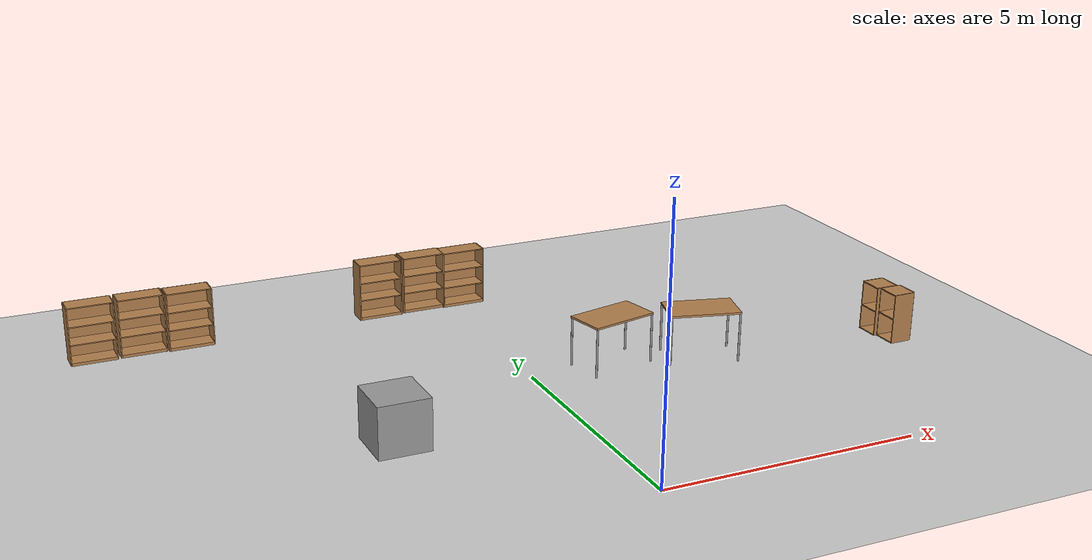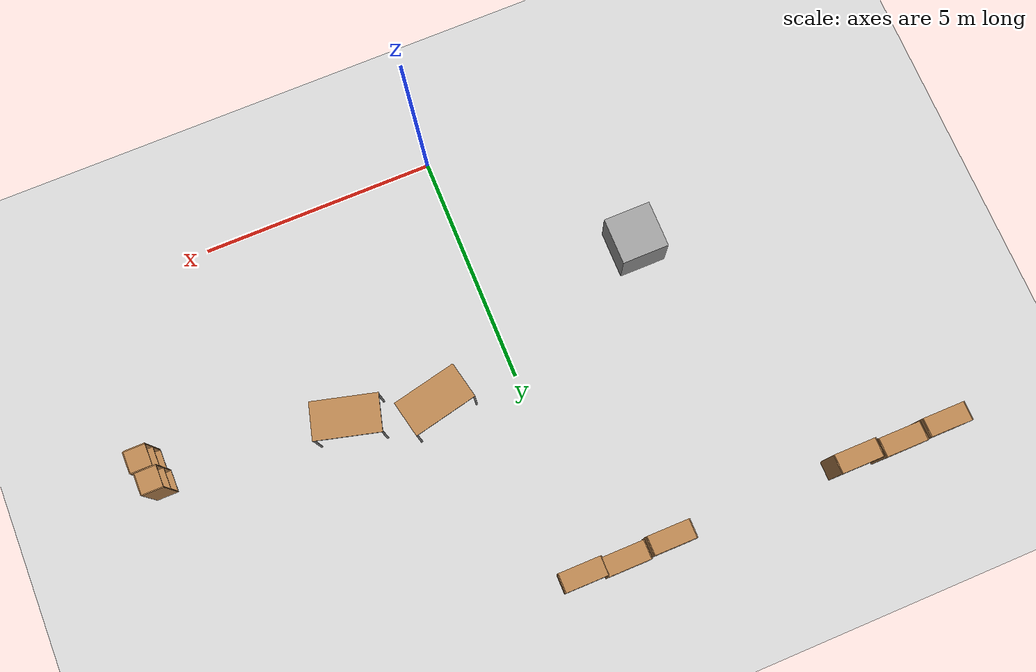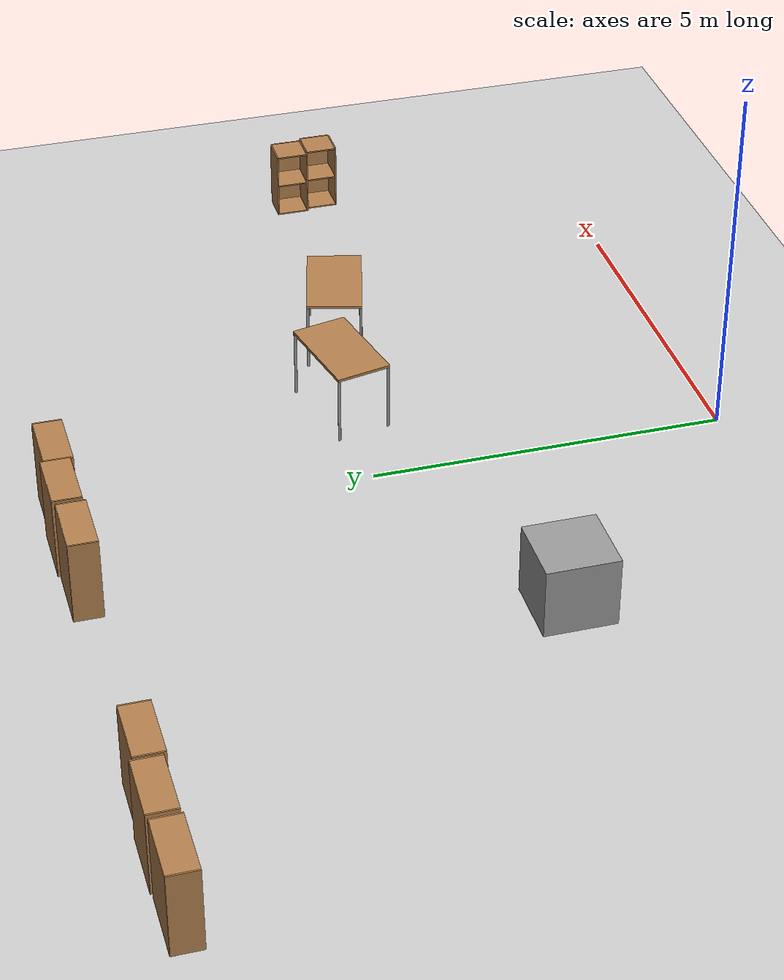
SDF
<sdf version="1.7">
 <world name="default">
  <model name="ground_plane">
   <static>1</static>
   <link name="link">
    <collision name="collision">
     <geometry><plane><normal>0 0 1</normal><size>100 100</size></plane></geometry>
     <surface><friction><ode><mu>100</mu><mu2>50</mu2></ode></friction></surface>
    </collision>
    <visual name="visual">
     <cast_shadows>0</cast_shadows>
     <geometry><plane><normal>0 0 1</normal><size>100 100</size></plane></geometry>
     <material>
      <script><uri>file://media/materials/scripts/gazebo.material</uri><name>Gazebo/Grey</name></script>
     </material>
    </visual>
   </link>
  </model>
  <model name="cabinet">
   <static>1</static>
   <link name="cabinet_bottom_plate">
    <inertial>
     <pose>0 0 -1 0 -0 0</pose>
     <inertia><ixx>2.05</ixx><ixy>0</ixy><ixz>0</ixz><iyy>2.05</iyy><iyz>0</iyz><izz>2.05</izz></inertia>
     <mass>25</mass>
    </inertial>
    <collision name="cabinet_bottom_plate_geom">
     <pose>0 0 0.01 0 -0 0</pose>
     <geometry><box><size>0.45 0.45 0.02</size></box></geometry>
    </collision>
    <visual name="cabinet_bottom_plate_geom_visual">
     <pose>0 0 0.01 0 -0 0</pose>
     <geometry><box><size>0.45 0.45 0.02</size></box></geometry>
     <material>
      <script><uri>file://media/materials/scripts/gazebo.material</uri><name>Gazebo/Wood</name></script>
     </material>
    </visual>
    <collision name="cabinet_bottom_plate_geom_cabinet_back_plate">
     <pose>0.235 0 0.51 0 -0 0</pose>
     <geometry><box><size>0.02 0.45 1.02</size></box></geometry>
    </collision>
    <visual name="cabinet_bottom_plate_geom_cabinet_back_plate_visual">
     <pose>0.235 0 0.51 0 -0 0</pose>
     <geometry><box><size>0.02 0.45 1.02</size></box></geometry>
     <material>
      <script><uri>file://media/materials/scripts/gazebo.material</uri><name>Gazebo/Wood</name></script>
     </material>
    </visual>
    <collision name="cabinet_bottom_plate_geom_cabinet_left_plate">
     <pose>0 0.235 0.51 0 -0 0</pose>
     <geometry><box><size>0.45 0.02 1.02</size></box></geometry>
    </collision>
    <visual name="cabinet_bottom_plate_geom_cabinet_left_plate_visual">
     <pose>0 0.235 0.51 0 -0 0</pose>
     <geometry><box><size>0.45 0.02 1.02</size></box></geometry>
     <material>
      <script><uri>file://media/materials/scripts/gazebo.material</uri><name>Gazebo/Wood</name></script>
     </material>
    </visual>
    <collision name="cabinet_bottom_plate_geom_cabinet_middle_plate">
     <pose>0 0 0.51 0 -0 0</pose>
     <geometry><box><size>0.45 0.45 0.02</size></box></geometry>
    </collision>
    <visual name="cabinet_bottom_plate_geom_cabinet_middle_plate_visual">
     <pose>0 0 0.51 0 -0 0</pose>
     <geometry><box><size>0.45 0.45 0.02</size></box></geometry>
     <material>
      <script><uri>file://media/materials/scripts/gazebo.material</uri><name>Gazebo/Wood</name></script>
     </material>
    </visual>
    <collision name="cabinet_bottom_plate_geom_cabinet_right_plate">
     <pose>0 -0.235 0.51 0 -0 0</pose>
     <geometry><box><size>0.45 0.02 1.02</size></box></geometry>
    </collision>
    <visual name="cabinet_bottom_plate_geom_cabinet_right_plate_visual">
     <pose>0 -0.235 0.51 0 -0 0</pose>
     <geometry><box><size>0.45 0.02 1.02</size></box></geometry>
     <material>
      <script><uri>file://media/materials/scripts/gazebo.material</uri><name>Gazebo/Wood</name></script>
     </material>
    </visual>
    <collision name="cabinet_bottom_plate_geom_cabinet_top_plate">
     <pose>0 0 1.01 0 -0 0</pose>
     <geometry><box><size>0.45 0.45 0.02</size></box></geometry>
    </collision>
    <visual name="cabinet_bottom_plate_geom_cabinet_top_plate_visual">
     <pose>0 0 1.01 0 -0 0</pose>
     <geometry><box><size>0.45 0.45 0.02</size></box></geometry>
     <material>
      <script><uri>file://media/materials/scripts/gazebo.material</uri><name>Gazebo/Wood</name></script>
     </material>
    </visual>
   </link>
   <pose>7.51979 3.85608 0 0 -0 0</pose>
  </model>
  <model name="cabinet_0">
   <static>1</static>
   <link name="cabinet_bottom_plate">
    <inertial>
     <pose>0 0 -1 0 -0 0</pose>
     <inertia><ixx>2.05</ixx><ixy>0</ixy><ixz>0</ixz><iyy>2.05</iyy><iyz>0</iyz><izz>2.05</izz></inertia>
     <mass>25</mass>
    </inertial>
    <collision name="cabinet_bottom_plate_geom">
     <pose>0 0 0.01 0 -0 0</pose>
     <geometry><box><size>0.45 0.45 0.02</size></box></geometry>
    </collision>
    <visual name="cabinet_bottom_plate_geom_visual">
     <pose>0 0 0.01 0 -0 0</pose>
     <geometry><box><size>0.45 0.45 0.02</size></box></geometry>
     <material>
      <script><uri>file://media/materials/scripts/gazebo.material</uri><name>Gazebo/Wood</name></script>
     </material>
    </visual>
    <collision name="cabinet_bottom_plate_geom_cabinet_back_plate">
     <pose>0.235 0 0.51 0 -0 0</pose>
     <geometry><box><size>0.02 0.45 1.02</size></box></geometry>
    </collision>
    <visual name="cabinet_bottom_plate_geom_cabinet_back_plate_visual">
     <pose>0.235 0 0.51 0 -0 0</pose>
     <geometry><box><size>0.02 0.45 1.02</size></box></geometry>
     <material>
      <script><uri>file://media/materials/scripts/gazebo.material</uri><name>Gazebo/Wood</name></script>
     </material>
    </visual>
    <collision name="cabinet_bottom_plate_geom_cabinet_left_plate">
     <pose>0 0.235 0.51 0 -0 0</pose>
     <geometry><box><size>0.45 0.02 1.02</size></box></geometry>
    </collision>
    <visual name="cabinet_bottom_plate_geom_cabinet_left_plate_visual">
     <pose>0 0.235 0.51 0 -0 0</pose>
     <geometry><box><size>0.45 0.02 1.02</size></box></geometry>
     <material>
      <script><uri>file://media/materials/scripts/gazebo.material</uri><name>Gazebo/Wood</name></script>
     </material>
    </visual>
    <collision name="cabinet_bottom_plate_geom_cabinet_middle_plate">
     <pose>0 0 0.51 0 -0 0</pose>
     <geometry><box><size>0.45 0.45 0.02</size></box></geometry>
    </collision>
    <visual name="cabinet_bottom_plate_geom_cabinet_middle_plate_visual">
     <pose>0 0 0.51 0 -0 0</pose>
     <geometry><box><size>0.45 0.45 0.02</size></box></geometry>
     <material>
      <script><uri>file://media/materials/scripts/gazebo.material</uri><name>Gazebo/Wood</name></script>
     </material>
    </visual>
    <collision name="cabinet_bottom_plate_geom_cabinet_right_plate">
     <pose>0 -0.235 0.51 0 -0 0</pose>
     <geometry><box><size>0.45 0.02 1.02</size></box></geometry>
    </collision>
    <visual name="cabinet_bottom_plate_geom_cabinet_right_plate_visual">
     <pose>0 -0.235 0.51 0 -0 0</pose>
     <geometry><box><size>0.45 0.02 1.02</size></box></geometry>
     <material>
      <script><uri>file://media/materials/scripts/gazebo.material</uri><name>Gazebo/Wood</name></script>
     </material>
    </visual>
    <collision name="cabinet_bottom_plate_geom_cabinet_top_plate">
     <pose>0 0 1.01 0 -0 0</pose>
     <geometry><box><size>0.45 0.45 0.02</size></box></geometry>
    </collision>
    <visual name="cabinet_bottom_plate_geom_cabinet_top_plate_visual">
     <pose>0 0 1.01 0 -0 0</pose>
     <geometry><box><size>0.45 0.45 0.02</size></box></geometry>
     <material>
      <script><uri>file://media/materials/scripts/gazebo.material</uri><name>Gazebo/Wood</name></script>
     </material>
    </visual>
   </link>
   <pose>7.4531 4.33816 0 0 -0 0</pose>
  </model>
  <model name="bookshelf">
   <static>1</static>
   <link name="link">
    <inertial><mass>1</mass></inertial>
    <collision name="back">
     <pose>0 0.005 0.6 0 -0 0</pose>
     <geometry><box><size>0.9 0.01 1.2</size></box></geometry>
    </collision>
    <visual name="visual1">
     <pose>0 0.005 0.6 0 -0 0</pose>
     <geometry><box><size>0.9 0.01 1.2</size></box></geometry>
     <material>
      <script><uri>file://media/materials/scripts/gazebo.material</uri><name>Gazebo/Wood</name></script>
     </material>
    </visual>
    <collision name="left_side">
     <pose>0.45 -0.195 0.6 0 -0 0</pose>
     <geometry><box><size>0.02 0.4 1.2</size></box></geometry>
    </collision>
    <visual name="visual2">
     <pose>0.45 -0.195 0.6 0 -0 0</pose>
     <geometry><box><size>0.02 0.4 1.2</size></box></geometry>
     <material>
      <script><uri>file://media/materials/scripts/gazebo.material</uri><name>Gazebo/Wood</name></script>
     </material>
    </visual>
    <collision name="right_side">
     <pose>-0.45 -0.195 0.6 0 -0 0</pose>
     <geometry><box><size>0.02 0.4 1.2</size></box></geometry>
    </collision>
    <visual name="visual3">
     <pose>-0.45 -0.195 0.6 0 -0 0</pose>
     <geometry><box><size>0.02 0.4 1.2</size></box></geometry>
     <material>
      <script><uri>file://media/materials/scripts/gazebo.material</uri><name>Gazebo/Wood</name></script>
     </material>
    </visual>
    <collision name="bottom">
     <pose>0 -0.195 0.03 0 -0 0</pose>
     <geometry><box><size>0.88 0.4 0.06</size></box></geometry>
    </collision>
    <visual name="visual4">
     <pose>0 -0.195 0.03 0 -0 0</pose>
     <geometry><box><size>0.88 0.4 0.06</size></box></geometry>
     <material>
      <script><uri>file://media/materials/scripts/gazebo.material</uri><name>Gazebo/Wood</name></script>
     </material>
    </visual>
    <collision name="top">
     <pose>0 -0.195 1.19 0 -0 0</pose>
     <geometry><box><size>0.88 0.4 0.02</size></box></geometry>
    </collision>
    <visual name="visual5">
     <pose>0 -0.195 1.19 0 -0 0</pose>
     <geometry><box><size>0.88 0.4 0.02</size></box></geometry>
     <material>
      <script><uri>file://media/materials/scripts/gazebo.material</uri><name>Gazebo/Wood</name></script>
     </material>
    </visual>
    <collision name="low_shelf">
     <pose>0 -0.195 0.43 0 -0 0</pose>
     <geometry><box><size>0.88 0.4 0.02</size></box></geometry>
    </collision>
    <visual name="visual6">
     <pose>0 -0.195 0.43 0 -0 0</pose>
     <geometry><box><size>0.88 0.4 0.02</size></box></geometry>
     <material>
      <script><uri>file://media/materials/scripts/gazebo.material</uri><name>Gazebo/Wood</name></script>
     </material>
    </visual>
    <collision name="high_shelf">
     <pose>0 -0.195 0.8 0 -0 0</pose>
     <geometry><box><size>0.88 0.4 0.02</size></box></geometry>
    </collision>
    <visual name="visual7">
     <pose>0 -0.195 0.8 0 -0 0</pose>
     <geometry><box><size>0.88 0.4 0.02</size></box></geometry>
     <material>
      <script><uri>file://media/materials/scripts/gazebo.material</uri><name>Gazebo/Wood</name></script>
     </material>
    </visual>
   </link>
   <pose>0.312449 9.46958 0 0 -0 0</pose>
  </model>
  <model name="bookshelf_clone">
   <static>1</static>
   <link name="link">
    <inertial><mass>1</mass></inertial>
    <collision name="back">
     <pose>0 0.005 0.6 0 -0 0</pose>
     <geometry><box><size>0.9 0.01 1.2</size></box></geometry>
    </collision>
    <visual name="visual1">
     <pose>0 0.005 0.6 0 -0 0</pose>
     <geometry><box><size>0.9 0.01 1.2</size></box></geometry>
     <material>
      <script><uri>file://media/materials/scripts/gazebo.material</uri><name>Gazebo/Wood</name></script>
     </material>
    </visual>
    <collision name="left_side">
     <pose>0.45 -0.195 0.6 0 -0 0</pose>
     <geometry><box><size>0.02 0.4 1.2</size></box></geometry>
    </collision>
    <visual name="visual2">
     <pose>0.45 -0.195 0.6 0 -0 0</pose>
     <geometry><box><size>0.02 0.4 1.2</size></box></geometry>
     <material>
      <script><uri>file://media/materials/scripts/gazebo.material</uri><name>Gazebo/Wood</name></script>
     </material>
    </visual>
    <collision name="right_side">
     <pose>-0.45 -0.195 0.6 0 -0 0</pose>
     <geometry><box><size>0.02 0.4 1.2</size></box></geometry>
    </collision>
    <visual name="visual3">
     <pose>-0.45 -0.195 0.6 0 -0 0</pose>
     <geometry><box><size>0.02 0.4 1.2</size></box></geometry>
     <material>
      <script><uri>file://media/materials/scripts/gazebo.material</uri><name>Gazebo/Wood</name></script>
     </material>
    </visual>
    <collision name="bottom">
     <pose>0 -0.195 0.03 0 -0 0</pose>
     <geometry><box><size>0.88 0.4 0.06</size></box></geometry>
    </collision>
    <visual name="visual4">
     <pose>0 -0.195 0.03 0 -0 0</pose>
     <geometry><box><size>0.88 0.4 0.06</size></box></geometry>
     <material>
      <script><uri>file://media/materials/scripts/gazebo.material</uri><name>Gazebo/Wood</name></script>
     </material>
    </visual>
    <collision name="top">
     <pose>0 -0.195 1.19 0 -0 0</pose>
     <geometry><box><size>0.88 0.4 0.02</size></box></geometry>
    </collision>
    <visual name="visual5">
     <pose>0 -0.195 1.19 0 -0 0</pose>
     <geometry><box><size>0.88 0.4 0.02</size></box></geometry>
     <material>
      <script><uri>file://media/materials/scripts/gazebo.material</uri><name>Gazebo/Wood</name></script>
     </material>
    </visual>
    <collision name="low_shelf">
     <pose>0 -0.195 0.43 0 -0 0</pose>
     <geometry><box><size>0.88 0.4 0.02</size></box></geometry>
    </collision>
    <visual name="visual6">
     <pose>0 -0.195 0.43 0 -0 0</pose>
     <geometry><box><size>0.88 0.4 0.02</size></box></geometry>
     <material>
      <script><uri>file://media/materials/scripts/gazebo.material</uri><name>Gazebo/Wood</name></script>
     </material>
    </visual>
    <collision name="high_shelf">
     <pose>0 -0.195 0.8 0 -0 0</pose>
     <geometry><box><size>0.88 0.4 0.02</size></box></geometry>
    </collision>
    <visual name="visual7">
     <pose>0 -0.195 0.8 0 -0 0</pose>
     <geometry><box><size>0.88 0.4 0.02</size></box></geometry>
     <material>
      <script><uri>file://media/materials/scripts/gazebo.material</uri><name>Gazebo/Wood</name></script>
     </material>
    </visual>
   </link>
   <pose>-0.568814 9.5086 0 0 -0 0</pose>
  </model>
  <model name="bookshelf_clone_0">
   <static>1</static>
   <link name="link">
    <inertial><mass>1</mass></inertial>
    <collision name="back">
     <pose>0 0.005 0.6 0 -0 0</pose>
     <geometry><box><size>0.9 0.01 1.2</size></box></geometry>
    </collision>
    <visual name="visual1">
     <pose>0 0.005 0.6 0 -0 0</pose>
     <geometry><box><size>0.9 0.01 1.2</size></box></geometry>
     <material>
      <script><uri>file://media/materials/scripts/gazebo.material</uri><name>Gazebo/Wood</name></script>
     </material>
    </visual>
    <collision name="left_side">
     <pose>0.45 -0.195 0.6 0 -0 0</pose>
     <geometry><box><size>0.02 0.4 1.2</size></box></geometry>
    </collision>
    <visual name="visual2">
     <pose>0.45 -0.195 0.6 0 -0 0</pose>
     <geometry><box><size>0.02 0.4 1.2</size></box></geometry>
     <material>
      <script><uri>file://media/materials/scripts/gazebo.material</uri><name>Gazebo/Wood</name></script>
     </material>
    </visual>
    <collision name="right_side">
     <pose>-0.45 -0.195 0.6 0 -0 0</pose>
     <geometry><box><size>0.02 0.4 1.2</size></box></geometry>
    </collision>
    <visual name="visual3">
     <pose>-0.45 -0.195 0.6 0 -0 0</pose>
     <geometry><box><size>0.02 0.4 1.2</size></box></geometry>
     <material>
      <script><uri>file://media/materials/scripts/gazebo.material</uri><name>Gazebo/Wood</name></script>
     </material>
    </visual>
    <collision name="bottom">
     <pose>0 -0.195 0.03 0 -0 0</pose>
     <geometry><box><size>0.88 0.4 0.06</size></box></geometry>
    </collision>
    <visual name="visual4">
     <pose>0 -0.195 0.03 0 -0 0</pose>
     <geometry><box><size>0.88 0.4 0.06</size></box></geometry>
     <material>
      <script><uri>file://media/materials/scripts/gazebo.material</uri><name>Gazebo/Wood</name></script>
     </material>
    </visual>
    <collision name="top">
     <pose>0 -0.195 1.19 0 -0 0</pose>
     <geometry><box><size>0.88 0.4 0.02</size></box></geometry>
    </collision>
    <visual name="visual5">
     <pose>0 -0.195 1.19 0 -0 0</pose>
     <geometry><box><size>0.88 0.4 0.02</size></box></geometry>
     <material>
      <script><uri>file://media/materials/scripts/gazebo.material</uri><name>Gazebo/Wood</name></script>
     </material>
    </visual>
    <collision name="low_shelf">
     <pose>0 -0.195 0.43 0 -0 0</pose>
     <geometry><box><size>0.88 0.4 0.02</size></box></geometry>
    </collision>
    <visual name="visual6">
     <pose>0 -0.195 0.43 0 -0 0</pose>
     <geometry><box><size>0.88 0.4 0.02</size></box></geometry>
     <material>
      <script><uri>file://media/materials/scripts/gazebo.material</uri><name>Gazebo/Wood</name></script>
     </material>
    </visual>
    <collision name="high_shelf">
     <pose>0 -0.195 0.8 0 -0 0</pose>
     <geometry><box><size>0.88 0.4 0.02</size></box></geometry>
    </collision>
    <visual name="visual7">
     <pose>0 -0.195 0.8 0 -0 0</pose>
     <geometry><box><size>0.88 0.4 0.02</size></box></geometry>
     <material>
      <script><uri>file://media/materials/scripts/gazebo.material</uri><name>Gazebo/Wood</name></script>
     </material>
    </visual>
   </link>
   <pose>-1.53763 9.47542 0 0 -0 0</pose>
  </model>
  <model name="bookshelf_clone_1">
   <static>1</static>
   <link name="link">
    <inertial><mass>1</mass></inertial>
    <collision name="back">
     <pose>0 0.005 0.6 0 -0 0</pose>
     <geometry><box><size>0.9 0.01 1.2</size></box></geometry>
    </collision>
    <visual name="visual1">
     <pose>0 0.005 0.6 0 -0 0</pose>
     <geometry><box><size>0.9 0.01 1.2</size></box></geometry>
     <material>
      <script><uri>file://media/materials/scripts/gazebo.material</uri><name>Gazebo/Wood</name></script>
     </material>
    </visual>
    <collision name="left_side">
     <pose>0.45 -0.195 0.6 0 -0 0</pose>
     <geometry><box><size>0.02 0.4 1.2</size></box></geometry>
    </collision>
    <visual name="visual2">
     <pose>0.45 -0.195 0.6 0 -0 0</pose>
     <geometry><box><size>0.02 0.4 1.2</size></box></geometry>
     <material>
      <script><uri>file://media/materials/scripts/gazebo.material</uri><name>Gazebo/Wood</name></script>
     </material>
    </visual>
    <collision name="right_side">
     <pose>-0.45 -0.195 0.6 0 -0 0</pose>
     <geometry><box><size>0.02 0.4 1.2</size></box></geometry>
    </collision>
    <visual name="visual3">
     <pose>-0.45 -0.195 0.6 0 -0 0</pose>
     <geometry><box><size>0.02 0.4 1.2</size></box></geometry>
     <material>
      <script><uri>file://media/materials/scripts/gazebo.material</uri><name>Gazebo/Wood</name></script>
     </material>
    </visual>
    <collision name="bottom">
     <pose>0 -0.195 0.03 0 -0 0</pose>
     <geometry><box><size>0.88 0.4 0.06</size></box></geometry>
    </collision>
    <visual name="visual4">
     <pose>0 -0.195 0.03 0 -0 0</pose>
     <geometry><box><size>0.88 0.4 0.06</size></box></geometry>
     <material>
      <script><uri>file://media/materials/scripts/gazebo.material</uri><name>Gazebo/Wood</name></script>
     </material>
    </visual>
    <collision name="top">
     <pose>0 -0.195 1.19 0 -0 0</pose>
     <geometry><box><size>0.88 0.4 0.02</size></box></geometry>
    </collision>
    <visual name="visual5">
     <pose>0 -0.195 1.19 0 -0 0</pose>
     <geometry><box><size>0.88 0.4 0.02</size></box></geometry>
     <material>
      <script><uri>file://media/materials/scripts/gazebo.material</uri><name>Gazebo/Wood</name></script>
     </material>
    </visual>
    <collision name="low_shelf">
     <pose>0 -0.195 0.43 0 -0 0</pose>
     <geometry><box><size>0.88 0.4 0.02</size></box></geometry>
    </collision>
    <visual name="visual6">
     <pose>0 -0.195 0.43 0 -0 0</pose>
     <geometry><box><size>0.88 0.4 0.02</size></box></geometry>
     <material>
      <script><uri>file://media/materials/scripts/gazebo.material</uri><name>Gazebo/Wood</name></script>
     </material>
    </visual>
    <collision name="high_shelf">
     <pose>0 -0.195 0.8 0 -0 0</pose>
     <geometry><box><size>0.88 0.4 0.02</size></box></geometry>
    </collision>
    <visual name="visual7">
     <pose>0 -0.195 0.8 0 -0 0</pose>
     <geometry><box><size>0.88 0.4 0.02</size></box></geometry>
     <material>
      <script><uri>file://media/materials/scripts/gazebo.material</uri><name>Gazebo/Wood</name></script>
     </material>
    </visual>
   </link>
   <pose>-5.53951 9.43477 0 0 -0 0</pose>
  </model>
  <model name="bookshelf_clone_2">
   <static>1</static>
   <link name="link">
    <inertial><mass>1</mass></inertial>
    <collision name="back">
     <pose>0 0.005 0.6 0 -0 0</pose>
     <geometry><box><size>0.9 0.01 1.2</size></box></geometry>
    </collision>
    <visual name="visual1">
     <pose>0 0.005 0.6 0 -0 0</pose>
     <geometry><box><size>0.9 0.01 1.2</size></box></geometry>
     <material>
      <script><uri>file://media/materials/scripts/gazebo.material</uri><name>Gazebo/Wood</name></script>
     </material>
    </visual>
    <collision name="left_side">
     <pose>0.45 -0.195 0.6 0 -0 0</pose>
     <geometry><box><size>0.02 0.4 1.2</size></box></geometry>
    </collision>
    <visual name="visual2">
     <pose>0.45 -0.195 0.6 0 -0 0</pose>
     <geometry><box><size>0.02 0.4 1.2</size></box></geometry>
     <material>
      <script><uri>file://media/materials/scripts/gazebo.material</uri><name>Gazebo/Wood</name></script>
     </material>
    </visual>
    <collision name="right_side">
     <pose>-0.45 -0.195 0.6 0 -0 0</pose>
     <geometry><box><size>0.02 0.4 1.2</size></box></geometry>
    </collision>
    <visual name="visual3">
     <pose>-0.45 -0.195 0.6 0 -0 0</pose>
     <geometry><box><size>0.02 0.4 1.2</size></box></geometry>
     <material>
      <script><uri>file://media/materials/scripts/gazebo.material</uri><name>Gazebo/Wood</name></script>
     </material>
    </visual>
    <collision name="bottom">
     <pose>0 -0.195 0.03 0 -0 0</pose>
     <geometry><box><size>0.88 0.4 0.06</size></box></geometry>
    </collision>
    <visual name="visual4">
     <pose>0 -0.195 0.03 0 -0 0</pose>
     <geometry><box><size>0.88 0.4 0.06</size></box></geometry>
     <material>
      <script><uri>file://media/materials/scripts/gazebo.material</uri><name>Gazebo/Wood</name></script>
     </material>
    </visual>
    <collision name="top">
     <pose>0 -0.195 1.19 0 -0 0</pose>
     <geometry><box><size>0.88 0.4 0.02</size></box></geometry>
    </collision>
    <visual name="visual5">
     <pose>0 -0.195 1.19 0 -0 0</pose>
     <geometry><box><size>0.88 0.4 0.02</size></box></geometry>
     <material>
      <script><uri>file://media/materials/scripts/gazebo.material</uri><name>Gazebo/Wood</name></script>
     </material>
    </visual>
    <collision name="low_shelf">
     <pose>0 -0.195 0.43 0 -0 0</pose>
     <geometry><box><size>0.88 0.4 0.02</size></box></geometry>
    </collision>
    <visual name="visual6">
     <pose>0 -0.195 0.43 0 -0 0</pose>
     <geometry><box><size>0.88 0.4 0.02</size></box></geometry>
     <material>
      <script><uri>file://media/materials/scripts/gazebo.material</uri><name>Gazebo/Wood</name></script>
     </material>
    </visual>
    <collision name="high_shelf">
     <pose>0 -0.195 0.8 0 -0 0</pose>
     <geometry><box><size>0.88 0.4 0.02</size></box></geometry>
    </collision>
    <visual name="visual7">
     <pose>0 -0.195 0.8 0 -0 0</pose>
     <geometry><box><size>0.88 0.4 0.02</size></box></geometry>
     <material>
      <script><uri>file://media/materials/scripts/gazebo.material</uri><name>Gazebo/Wood</name></script>
     </material>
    </visual>
   </link>
   <pose>-6.48248 9.47688 0 0 -0 0</pose>
  </model>
  <model name="bookshelf_clone_3">
   <static>1</static>
   <link name="link">
    <inertial><mass>1</mass></inertial>
    <collision name="back">
     <pose>0 0.005 0.6 0 -0 0</pose>
     <geometry><box><size>0.9 0.01 1.2</size></box></geometry>
    </collision>
    <visual name="visual1">
     <pose>0 0.005 0.6 0 -0 0</pose>
     <geometry><box><size>0.9 0.01 1.2</size></box></geometry>
     <material>
      <script><uri>file://media/materials/scripts/gazebo.material</uri><name>Gazebo/Wood</name></script>
     </material>
    </visual>
    <collision name="left_side">
     <pose>0.45 -0.195 0.6 0 -0 0</pose>
     <geometry><box><size>0.02 0.4 1.2</size></box></geometry>
    </collision>
    <visual name="visual2">
     <pose>0.45 -0.195 0.6 0 -0 0</pose>
     <geometry><box><size>0.02 0.4 1.2</size></box></geometry>
     <material>
      <script><uri>file://media/materials/scripts/gazebo.material</uri><name>Gazebo/Wood</name></script>
     </material>
    </visual>
    <collision name="right_side">
     <pose>-0.45 -0.195 0.6 0 -0 0</pose>
     <geometry><box><size>0.02 0.4 1.2</size></box></geometry>
    </collision>
    <visual name="visual3">
     <pose>-0.45 -0.195 0.6 0 -0 0</pose>
     <geometry><box><size>0.02 0.4 1.2</size></box></geometry>
     <material>
      <script><uri>file://media/materials/scripts/gazebo.material</uri><name>Gazebo/Wood</name></script>
     </material>
    </visual>
    <collision name="bottom">
     <pose>0 -0.195 0.03 0 -0 0</pose>
     <geometry><box><size>0.88 0.4 0.06</size></box></geometry>
    </collision>
    <visual name="visual4">
     <pose>0 -0.195 0.03 0 -0 0</pose>
     <geometry><box><size>0.88 0.4 0.06</size></box></geometry>
     <material>
      <script><uri>file://media/materials/scripts/gazebo.material</uri><name>Gazebo/Wood</name></script>
     </material>
    </visual>
    <collision name="top">
     <pose>0 -0.195 1.19 0 -0 0</pose>
     <geometry><box><size>0.88 0.4 0.02</size></box></geometry>
    </collision>
    <visual name="visual5">
     <pose>0 -0.195 1.19 0 -0 0</pose>
     <geometry><box><size>0.88 0.4 0.02</size></box></geometry>
     <material>
      <script><uri>file://media/materials/scripts/gazebo.material</uri><name>Gazebo/Wood</name></script>
     </material>
    </visual>
    <collision name="low_shelf">
     <pose>0 -0.195 0.43 0 -0 0</pose>
     <geometry><box><size>0.88 0.4 0.02</size></box></geometry>
    </collision>
    <visual name="visual6">
     <pose>0 -0.195 0.43 0 -0 0</pose>
     <geometry><box><size>0.88 0.4 0.02</size></box></geometry>
     <material>
      <script><uri>file://media/materials/scripts/gazebo.material</uri><name>Gazebo/Wood</name></script>
     </material>
    </visual>
    <collision name="high_shelf">
     <pose>0 -0.195 0.8 0 -0 0</pose>
     <geometry><box><size>0.88 0.4 0.02</size></box></geometry>
    </collision>
    <visual name="visual7">
     <pose>0 -0.195 0.8 0 -0 0</pose>
     <geometry><box><size>0.88 0.4 0.02</size></box></geometry>
     <material>
      <script><uri>file://media/materials/scripts/gazebo.material</uri><name>Gazebo/Wood</name></script>
     </material>
    </visual>
   </link>
   <pose>-7.45707 9.45546 0 0 -0 0</pose>
  </model>
  <model name="table">
   <static>0</static>
   <link name="link">
    <collision name="surface">
     <pose>0 0 1 0 -0 0</pose>
     <geometry><box><size>1.5 0.8 0.03</size></box></geometry>
     <surface><friction><ode><mu>0.6</mu><mu2>0.6</mu2></ode></friction></surface>
    </collision>
    <visual name="visual1">
     <pose>0 0 1 0 -0 0</pose>
     <geometry><box><size>1.4 0.8 0.04</size></box></geometry>
     <material>
      <script><uri>file://media/materials/scripts/gazebo.material</uri><name>Gazebo/Wood</name></script>
     </material>
    </visual>
    <collision name="front_left_leg">
     <pose>0.68 0.38 0.5 0 -0 0</pose>
     <geometry><cylinder><radius>0.02</radius><length>1</length></cylinder></geometry>
    </collision>
    <visual name="front_left_leg">
     <pose>0.68 0.38 0.5 0 -0 0</pose>
     <geometry><cylinder><radius>0.02</radius><length>1</length></cylinder></geometry>
     <material>
      <script><uri>file://media/materials/scripts/gazebo.material</uri><name>Gazebo/Grey</name></script>
     </material>
    </visual>
    <collision name="front_right_leg">
     <pose>0.68 -0.38 0.5 0 -0 0</pose>
     <geometry><cylinder><radius>0.02</radius><length>1</length></cylinder></geometry>
    </collision>
    <visual name="front_right_leg">
     <pose>0.68 -0.38 0.5 0 -0 0</pose>
     <geometry><cylinder><radius>0.02</radius><length>1</length></cylinder></geometry>
     <material>
      <script><uri>file://media/materials/scripts/gazebo.material</uri><name>Gazebo/Grey</name></script>
     </material>
    </visual>
    <collision name="back_right_leg">
     <pose>-0.68 -0.38 0.5 0 -0 0</pose>
     <geometry><cylinder><radius>0.02</radius><length>1</length></cylinder></geometry>
    </collision>
    <visual name="back_right_leg">
     <pose>-0.68 -0.38 0.5 0 -0 0</pose>
     <geometry><cylinder><radius>0.02</radius><length>1</length></cylinder></geometry>
     <material>
      <script><uri>file://media/materials/scripts/gazebo.material</uri><name>Gazebo/Grey</name></script>
     </material>
    </visual>
    <collision name="back_left_leg">
     <pose>-0.68 0.38 0.5 0 -0 0</pose>
     <geometry><cylinder><radius>0.02</radius><length>1</length></cylinder></geometry>
    </collision>
    <visual name="back_left_leg">
     <pose>-0.68 0.38 0.5 0 -0 0</pose>
     <geometry><cylinder><radius>0.02</radius><length>1</length></cylinder></geometry>
     <material>
      <script><uri>file://media/materials/scripts/gazebo.material</uri><name>Gazebo/Grey</name></script>
     </material>
    </visual>
    <inertial>
     <inertia><ixx>1</ixx><ixy>0</ixy><ixz>0</ixz><iyy>1</iyy><iyz>0</iyz><izz>1</izz></inertia>
     <mass>1</mass>
    </inertial>
   </link>
   <pose>1.70262 5.00205 -1e-06 -0 1e-06 0.21636</pose>
  </model>
  <model name="table_clone">
   <static>0</static>
   <link name="link">
    <collision name="surface">
     <pose>0 0 1 0 -0 0</pose>
     <geometry><box><size>1.5 0.8 0.03</size></box></geometry>
     <surface><friction><ode><mu>0.6</mu><mu2>0.6</mu2></ode></friction></surface>
    </collision>
    <visual name="visual1">
     <pose>0 0 1 0 -0 0</pose>
     <geometry><box><size>1.4 0.8 0.04</size></box></geometry>
     <material>
      <script><uri>file://media/materials/scripts/gazebo.material</uri><name>Gazebo/Wood</name></script>
     </material>
    </visual>
    <collision name="front_left_leg">
     <pose>0.68 0.38 0.5 0 -0 0</pose>
     <geometry><cylinder><radius>0.02</radius><length>1</length></cylinder></geometry>
    </collision>
    <visual name="front_left_leg">
     <pose>0.68 0.38 0.5 0 -0 0</pose>
     <geometry><cylinder><radius>0.02</radius><length>1</length></cylinder></geometry>
     <material>
      <script><uri>file://media/materials/scripts/gazebo.material</uri><name>Gazebo/Grey</name></script>
     </material>
    </visual>
    <collision name="front_right_leg">
     <pose>0.68 -0.38 0.5 0 -0 0</pose>
     <geometry><cylinder><radius>0.02</radius><length>1</length></cylinder></geometry>
    </collision>
    <visual name="front_right_leg">
     <pose>0.68 -0.38 0.5 0 -0 0</pose>
     <geometry><cylinder><radius>0.02</radius><length>1</length></cylinder></geometry>
     <material>
      <script><uri>file://media/materials/scripts/gazebo.material</uri><name>Gazebo/Grey</name></script>
     </material>
    </visual>
    <collision name="back_right_leg">
     <pose>-0.68 -0.38 0.5 0 -0 0</pose>
     <geometry><cylinder><radius>0.02</radius><length>1</length></cylinder></geometry>
    </collision>
    <visual name="back_right_leg">
     <pose>-0.68 -0.38 0.5 0 -0 0</pose>
     <geometry><cylinder><radius>0.02</radius><length>1</length></cylinder></geometry>
     <material>
      <script><uri>file://media/materials/scripts/gazebo.material</uri><name>Gazebo/Grey</name></script>
     </material>
    </visual>
    <collision name="back_left_leg">
     <pose>-0.68 0.38 0.5 0 -0 0</pose>
     <geometry><cylinder><radius>0.02</radius><length>1</length></cylinder></geometry>
    </collision>
    <visual name="back_left_leg">
     <pose>-0.68 0.38 0.5 0 -0 0</pose>
     <geometry><cylinder><radius>0.02</radius><length>1</length></cylinder></geometry>
     <material>
      <script><uri>file://media/materials/scripts/gazebo.material</uri><name>Gazebo/Grey</name></script>
     </material>
    </visual>
    <inertial>
     <inertia><ixx>1</ixx><ixy>0</ixy><ixz>0</ixz><iyy>1</iyy><iyz>0</iyz><izz>1</izz></inertia>
     <mass>1</mass>
    </inertial>
   </link>
   <pose>3.45825 4.64286 -9e-06 2e-06 -0 -0.254997</pose>
  </model>
  <model name="unit_box_0">
   <pose>-3.36779 3.35855 0.499995 0 -1e-05 0</pose>
   <link name="link">
    <inertial>
     <mass>1</mass>
     <inertia>
      <ixx>0.166667</ixx>
      <ixy>0</ixy>
      <ixz>0</ixz>
      <iyy>0.166667</iyy>
      <iyz>0</iyz>
      <izz>0.166667</izz>
     </inertia>
    </inertial>
    <collision name="collision"><geometry><box><size>1 1 1</size></box></geometry></collision>
    <visual name="visual">
     <geometry><box><size>1 1 1</size></box></geometry>
     <material>
      <script><name>Gazebo/Grey</name><uri>file://media/materials/scripts/gazebo.material</uri></script>
     </material>
    </visual>
   </link>
  </model>
 </world>
</sdf>
